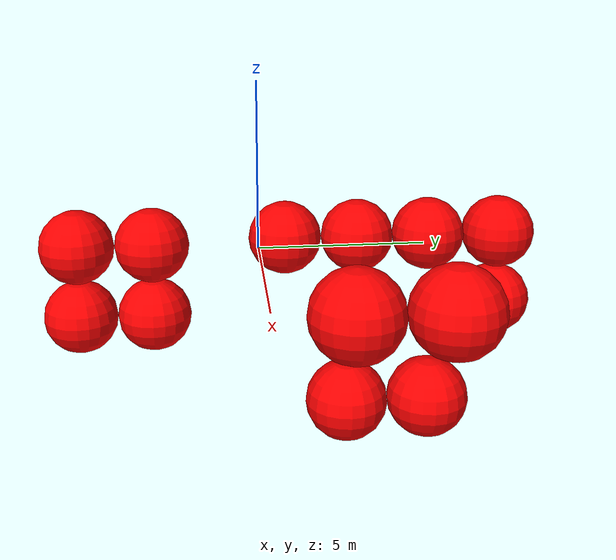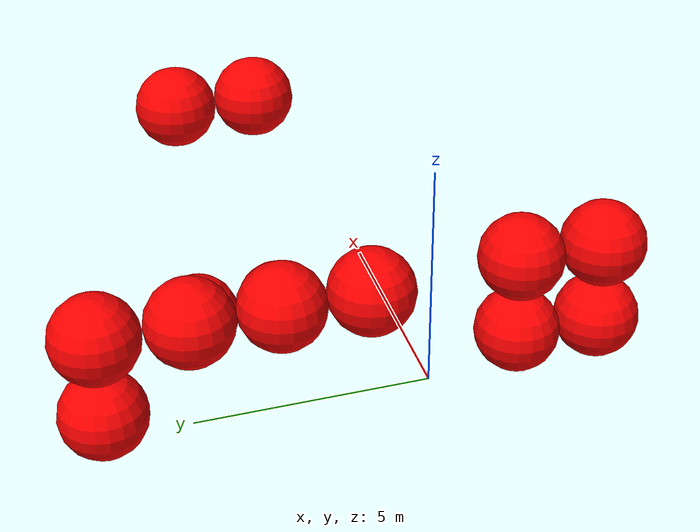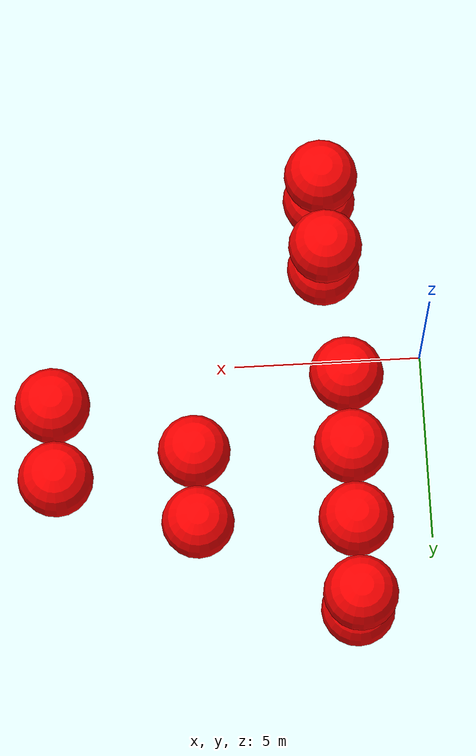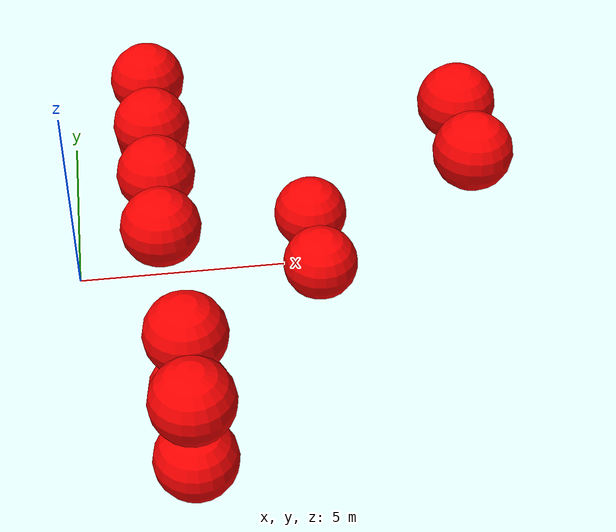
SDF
<sdf version="1.8">
 <world name="3d_world">
  <model name="obstacle_4" canonical_link="obstacle">
   <static>true</static>
   <pose relative_to="world">2.05 6.62 -1.00 0 0 0</pose>
   <link name="obstacle">
    <pose relative_to="__model__">0.0 0 0.0 0 0 0</pose>
    <visual name="visual">
     <geometry><sphere><radius>1.00</radius></sphere></geometry>
     <material>
      <ambient>1.0 0.0 0.0 1</ambient>
      <diffuse>1.0 0.0 0.0 1</diffuse>
      <specular>1.0 0.0 0.0 1</specular>
     </material>
    </visual>
    <collision name="collision"><geometry><sphere><radius>1.00</radius></sphere></geometry></collision>
    <enable_gravity>false</enable_gravity>
   </link>
   <plugin filename="ignition-gazebo-velocity-control-system" name="ignition::gazebo::systems::VelocityControl">
    <initial_linear>0.00 0.00 0.00</initial_linear>
    <initial_angular>0 0 0</initial_angular>
   </plugin>
   <plugin filename="ignition-gazebo-odometry-publisher-system" name="ignition::gazebo::systems::OdometryPublisher">
    <dimensions>3</dimensions>
   </plugin>
  </model>
  <model name="obstacle_5" canonical_link="obstacle">
   <static>true</static>
   <pose relative_to="world">2.05 0.62 1.00 0 0 0</pose>
   <link name="obstacle">
    <pose relative_to="__model__">0.0 0 0.0 0 0 0</pose>
    <visual name="visual">
     <geometry><sphere><radius>1.00</radius></sphere></geometry>
     <material>
      <ambient>1.0 0.0 0.0 1</ambient>
      <diffuse>1.0 0.0 0.0 1</diffuse>
      <specular>1.0 0.0 0.0 1</specular>
     </material>
    </visual>
    <collision name="collision"><geometry><sphere><radius>1.00</radius></sphere></geometry></collision>
    <enable_gravity>false</enable_gravity>
   </link>
   <plugin filename="ignition-gazebo-velocity-control-system" name="ignition::gazebo::systems::VelocityControl">
    <initial_linear>0.00 0.00 0.00</initial_linear>
    <initial_angular>0 0 0</initial_angular>
   </plugin>
   <plugin filename="ignition-gazebo-odometry-publisher-system" name="ignition::gazebo::systems::OdometryPublisher">
    <dimensions>3</dimensions>
   </plugin>
  </model>
  <model name="obstacle_6" canonical_link="obstacle">
   <static>true</static>
   <pose relative_to="world">2.05 2.62 1.00 0 0 0</pose>
   <link name="obstacle">
    <pose relative_to="__model__">0.0 0 0.0 0 0 0</pose>
    <visual name="visual">
     <geometry><sphere><radius>1.00</radius></sphere></geometry>
     <material>
      <ambient>1.0 0.0 0.0 1</ambient>
      <diffuse>1.0 0.0 0.0 1</diffuse>
      <specular>1.0 0.0 0.0 1</specular>
     </material>
    </visual>
    <collision name="collision"><geometry><sphere><radius>1.00</radius></sphere></geometry></collision>
    <enable_gravity>false</enable_gravity>
   </link>
   <plugin filename="ignition-gazebo-velocity-control-system" name="ignition::gazebo::systems::VelocityControl">
    <initial_linear>0.00 0.00 0.00</initial_linear>
    <initial_angular>0 0 0</initial_angular>
   </plugin>
   <plugin filename="ignition-gazebo-odometry-publisher-system" name="ignition::gazebo::systems::OdometryPublisher">
    <dimensions>3</dimensions>
   </plugin>
  </model>
  <model name="obstacle_7" canonical_link="obstacle">
   <static>true</static>
   <pose relative_to="world">2.05 4.62 1.00 0 0 0</pose>
   <link name="obstacle">
    <pose relative_to="__model__">0.0 0 0.0 0 0 0</pose>
    <visual name="visual">
     <geometry><sphere><radius>1.00</radius></sphere></geometry>
     <material>
      <ambient>1.0 0.0 0.0 1</ambient>
      <diffuse>1.0 0.0 0.0 1</diffuse>
      <specular>1.0 0.0 0.0 1</specular>
     </material>
    </visual>
    <collision name="collision"><geometry><sphere><radius>1.00</radius></sphere></geometry></collision>
    <enable_gravity>false</enable_gravity>
   </link>
   <plugin filename="ignition-gazebo-velocity-control-system" name="ignition::gazebo::systems::VelocityControl">
    <initial_linear>0.00 0.00 0.00</initial_linear>
    <initial_angular>0 0 0</initial_angular>
   </plugin>
   <plugin filename="ignition-gazebo-odometry-publisher-system" name="ignition::gazebo::systems::OdometryPublisher">
    <dimensions>3</dimensions>
   </plugin>
  </model>
  <model name="obstacle_8" canonical_link="obstacle">
   <static>true</static>
   <pose relative_to="world">2.05 6.62 1.00 0 0 0</pose>
   <link name="obstacle">
    <pose relative_to="__model__">0.0 0 0.0 0 0 0</pose>
    <visual name="visual">
     <geometry><sphere><radius>1.00</radius></sphere></geometry>
     <material>
      <ambient>1.0 0.0 0.0 1</ambient>
      <diffuse>1.0 0.0 0.0 1</diffuse>
      <specular>1.0 0.0 0.0 1</specular>
     </material>
    </visual>
    <collision name="collision"><geometry><sphere><radius>1.00</radius></sphere></geometry></collision>
    <enable_gravity>false</enable_gravity>
   </link>
   <plugin filename="ignition-gazebo-velocity-control-system" name="ignition::gazebo::systems::VelocityControl">
    <initial_linear>0.00 0.00 0.00</initial_linear>
    <initial_angular>0 0 0</initial_angular>
   </plugin>
   <plugin filename="ignition-gazebo-odometry-publisher-system" name="ignition::gazebo::systems::OdometryPublisher">
    <dimensions>3</dimensions>
   </plugin>
  </model>
  <model name="obstacle_9" canonical_link="obstacle">
   <static>true</static>
   <pose relative_to="world">2.39 -5.00 -1.00 0 0 0</pose>
   <link name="obstacle">
    <pose relative_to="__model__">0.0 0 0.0 0 0 0</pose>
    <visual name="visual">
     <geometry><sphere><radius>1.00</radius></sphere></geometry>
     <material>
      <ambient>1.0 0.0 0.0 1</ambient>
      <diffuse>1.0 0.0 0.0 1</diffuse>
      <specular>1.0 0.0 0.0 1</specular>
     </material>
    </visual>
    <collision name="collision"><geometry><sphere><radius>1.00</radius></sphere></geometry></collision>
    <enable_gravity>false</enable_gravity>
   </link>
   <plugin filename="ignition-gazebo-velocity-control-system" name="ignition::gazebo::systems::VelocityControl">
    <initial_linear>0.00 0.00 0.00</initial_linear>
    <initial_angular>0 0 0</initial_angular>
   </plugin>
   <plugin filename="ignition-gazebo-odometry-publisher-system" name="ignition::gazebo::systems::OdometryPublisher">
    <dimensions>3</dimensions>
   </plugin>
  </model>
  <model name="obstacle_10" canonical_link="obstacle">
   <static>true</static>
   <pose relative_to="world">2.39 -3.00 -1.00 0 0 0</pose>
   <link name="obstacle">
    <pose relative_to="__model__">0.0 0 0.0 0 0 0</pose>
    <visual name="visual">
     <geometry><sphere><radius>1.00</radius></sphere></geometry>
     <material>
      <ambient>1.0 0.0 0.0 1</ambient>
      <diffuse>1.0 0.0 0.0 1</diffuse>
      <specular>1.0 0.0 0.0 1</specular>
     </material>
    </visual>
    <collision name="collision"><geometry><sphere><radius>1.00</radius></sphere></geometry></collision>
    <enable_gravity>false</enable_gravity>
   </link>
   <plugin filename="ignition-gazebo-velocity-control-system" name="ignition::gazebo::systems::VelocityControl">
    <initial_linear>0.00 0.00 0.00</initial_linear>
    <initial_angular>0 0 0</initial_angular>
   </plugin>
   <plugin filename="ignition-gazebo-odometry-publisher-system" name="ignition::gazebo::systems::OdometryPublisher">
    <dimensions>3</dimensions>
   </plugin>
  </model>
  <model name="obstacle_11" canonical_link="obstacle">
   <static>true</static>
   <pose relative_to="world">2.39 -5.00 1.00 0 0 0</pose>
   <link name="obstacle">
    <pose relative_to="__model__">0.0 0 0.0 0 0 0</pose>
    <visual name="visual">
     <geometry><sphere><radius>1.00</radius></sphere></geometry>
     <material>
      <ambient>1.0 0.0 0.0 1</ambient>
      <diffuse>1.0 0.0 0.0 1</diffuse>
      <specular>1.0 0.0 0.0 1</specular>
     </material>
    </visual>
    <collision name="collision"><geometry><sphere><radius>1.00</radius></sphere></geometry></collision>
    <enable_gravity>false</enable_gravity>
   </link>
   <plugin filename="ignition-gazebo-velocity-control-system" name="ignition::gazebo::systems::VelocityControl">
    <initial_linear>0.00 0.00 0.00</initial_linear>
    <initial_angular>0 0 0</initial_angular>
   </plugin>
   <plugin filename="ignition-gazebo-odometry-publisher-system" name="ignition::gazebo::systems::OdometryPublisher">
    <dimensions>3</dimensions>
   </plugin>
  </model>
  <model name="obstacle_12" canonical_link="obstacle">
   <static>true</static>
   <pose relative_to="world">2.39 -3.00 1.00 0 0 0</pose>
   <link name="obstacle">
    <pose relative_to="__model__">0.0 0 0.0 0 0 0</pose>
    <visual name="visual">
     <geometry><sphere><radius>1.00</radius></sphere></geometry>
     <material>
      <ambient>1.0 0.0 0.0 1</ambient>
      <diffuse>1.0 0.0 0.0 1</diffuse>
      <specular>1.0 0.0 0.0 1</specular>
     </material>
    </visual>
    <collision name="collision"><geometry><sphere><radius>1.00</radius></sphere></geometry></collision>
    <enable_gravity>false</enable_gravity>
   </link>
   <plugin filename="ignition-gazebo-velocity-control-system" name="ignition::gazebo::systems::VelocityControl">
    <initial_linear>0.00 0.00 0.00</initial_linear>
    <initial_angular>0 0 0</initial_angular>
   </plugin>
   <plugin filename="ignition-gazebo-odometry-publisher-system" name="ignition::gazebo::systems::OdometryPublisher">
    <dimensions>3</dimensions>
   </plugin>
  </model>
  <model name="obstacle_22" canonical_link="obstacle">
   <static>false</static>
   <pose relative_to="world">6.21 1.77 -1.83 0 0 0</pose>
   <link name="obstacle">
    <pose relative_to="__model__">0.0 0 0.0 0 0 0</pose>
    <visual name="visual">
     <geometry><sphere><radius>1.00</radius></sphere></geometry>
     <material>
      <ambient>1.0 0.0 0.0 1</ambient>
      <diffuse>1.0 0.0 0.0 1</diffuse>
      <specular>1.0 0.0 0.0 1</specular>
     </material>
    </visual>
    <collision name="collision"><geometry><sphere><radius>1.00</radius></sphere></geometry></collision>
    <enable_gravity>false</enable_gravity>
   </link>
   <plugin filename="ignition-gazebo-velocity-control-system" name="ignition::gazebo::systems::VelocityControl">
    <initial_linear>0.00 -1.58 1.12</initial_linear>
    <initial_angular>0 0 0</initial_angular>
   </plugin>
   <plugin filename="ignition-gazebo-odometry-publisher-system" name="ignition::gazebo::systems::OdometryPublisher">
    <dimensions>3</dimensions>
   </plugin>
  </model>
  <model name="obstacle_23" canonical_link="obstacle">
   <static>false</static>
   <pose relative_to="world">6.21 3.77 -1.83 0 0 0</pose>
   <link name="obstacle">
    <pose relative_to="__model__">0.0 0 0.0 0 0 0</pose>
    <visual name="visual">
     <geometry><sphere><radius>1.00</radius></sphere></geometry>
     <material>
      <ambient>1.0 0.0 0.0 1</ambient>
      <diffuse>1.0 0.0 0.0 1</diffuse>
      <specular>1.0 0.0 0.0 1</specular>
     </material>
    </visual>
    <collision name="collision"><geometry><sphere><radius>1.00</radius></sphere></geometry></collision>
    <enable_gravity>false</enable_gravity>
   </link>
   <plugin filename="ignition-gazebo-velocity-control-system" name="ignition::gazebo::systems::VelocityControl">
    <initial_linear>0.00 -1.58 1.12</initial_linear>
    <initial_angular>0 0 0</initial_angular>
   </plugin>
   <plugin filename="ignition-gazebo-odometry-publisher-system" name="ignition::gazebo::systems::OdometryPublisher">
    <dimensions>3</dimensions>
   </plugin>
  </model>
  <model name="obstacle_24" canonical_link="obstacle">
   <static>false</static>
   <pose relative_to="world">9.90 1.37 1.98 0 0 0</pose>
   <link name="obstacle">
    <pose relative_to="__model__">0.0 0 0.0 0 0 0</pose>
    <visual name="visual">
     <geometry><sphere><radius>1.00</radius></sphere></geometry>
     <material>
      <ambient>1.0 0.0 0.0 1</ambient>
      <diffuse>1.0 0.0 0.0 1</diffuse>
      <specular>1.0 0.0 0.0 1</specular>
     </material>
    </visual>
    <collision name="collision"><geometry><sphere><radius>1.00</radius></sphere></geometry></collision>
    <enable_gravity>false</enable_gravity>
   </link>
   <plugin filename="ignition-gazebo-velocity-control-system" name="ignition::gazebo::systems::VelocityControl">
    <initial_linear>0.00 -1.08 -0.93</initial_linear>
    <initial_angular>0 0 0</initial_angular>
   </plugin>
   <plugin filename="ignition-gazebo-odometry-publisher-system" name="ignition::gazebo::systems::OdometryPublisher">
    <dimensions>3</dimensions>
   </plugin>
  </model>
  <model name="obstacle_25" canonical_link="obstacle">
   <static>false</static>
   <pose relative_to="world">9.90 3.37 1.98 0 0 0</pose>
   <link name="obstacle">
    <pose relative_to="__model__">0.0 0 0.0 0 0 0</pose>
    <visual name="visual">
     <geometry><sphere><radius>1.00</radius></sphere></geometry>
     <material>
      <ambient>1.0 0.0 0.0 1</ambient>
      <diffuse>1.0 0.0 0.0 1</diffuse>
      <specular>1.0 0.0 0.0 1</specular>
     </material>
    </visual>
    <collision name="collision"><geometry><sphere><radius>1.00</radius></sphere></geometry></collision>
    <enable_gravity>false</enable_gravity>
   </link>
   <plugin filename="ignition-gazebo-velocity-control-system" name="ignition::gazebo::systems::VelocityControl">
    <initial_linear>0.00 -1.08 -0.93</initial_linear>
    <initial_angular>0 0 0</initial_angular>
   </plugin>
   <plugin filename="ignition-gazebo-odometry-publisher-system" name="ignition::gazebo::systems::OdometryPublisher">
    <dimensions>3</dimensions>
   </plugin>
  </model>
 </world>
</sdf>
